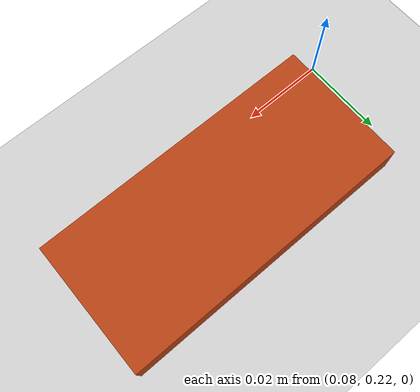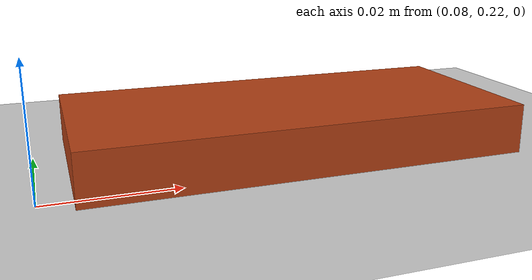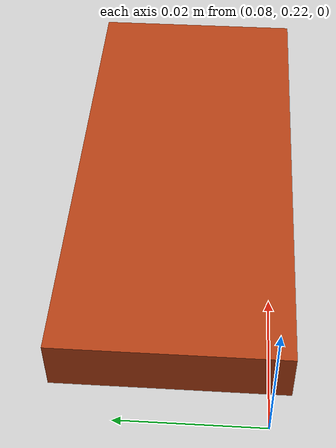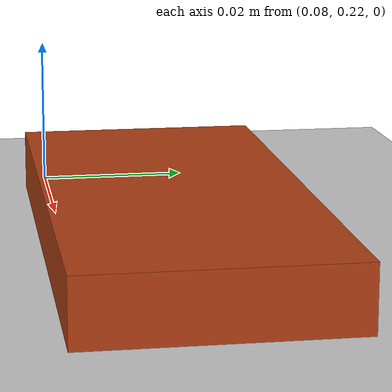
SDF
<?xml version="1.0" ?>

<sdf version="1.9">

  <world name="raptor_world">
    <plugin filename="gz-sim-physics-system" name="gz::sim::systems::Physics"/>
    <plugin filename="gz-sim-user-commands-system" name="gz::sim::systems::UserCommands"/>
    <plugin filename="gz-sim-scene-broadcaster-system" name="gz::sim::systems::SceneBroadcaster"/>
    <plugin filename="gz-sim-imu-system" name="gz::sim::systems::Imu"/>
    <plugin filename="gz-sim-contact-system" name="gz::sim::systems::Contact"/>
    <plugin filename="gz-sim-sensors-system" name="gz::sim::systems::Sensors">
      <render_engine>ogre2</render_engine>
    </plugin>

    <!-- 중력 -->
    <gravity>0 0 -9.81</gravity>

    <!-- 물리 엔진 -->
    <physics name="default_physics" type="ignored">
      <max_step_size>0.001</max_step_size>
      <real_time_factor>1.0</real_time_factor>
    </physics>

    <light type="directional" name="sun">
      <cast_shadows>true</cast_shadows>

      <pose>
        0 0 10 0 0 0
      </pose>

      <diffuse>
        0.8 0.8 0.8 1
      </diffuse>

      <specular>
        0.2 0.2 0.2 1
      </specular>

      <direction>
        -0.5 0.1 -0.9
      </direction>
    </light>

    <!-- 바닥 -->
    <model name="ground_plane">

      <static>true</static>

      <link name="link">

        <collision name="collision">

          <geometry>
            <plane>
              <normal>0 0 1</normal>
              <size>100 100</size>
            </plane>
          </geometry>

        </collision>

        <visual name="visual">

          <geometry>
            <plane>
              <normal>0 0 1</normal>
              <size>100 100</size>
            </plane>
          </geometry>

          <material>
            <ambient>0.8 0.8 0.8 1</ambient>
            <diffuse>0.8 0.8 0.8 1</diffuse>
          </material>

        </visual>

      </link>

    </model>

    <!-- Static contact-conformity test, not a validated traversable terrain. -->
    <model name="toe_contact_step"><static>true</static><pose>0.12 0.233 0.004 0 0 0</pose>
      <link name="step">
        <collision name="collision"><geometry><box><size>0.07 0.032 0.008</size></box></geometry></collision>
        <visual name="visual"><geometry><box><size>0.07 0.032 0.008</size></box></geometry>
          <material><ambient>0.7 0.25 0.08 1</ambient><diffuse>0.7 0.25 0.08 1</diffuse></material>
        </visual>
      </link>
    </model>
  </world>

</sdf>
